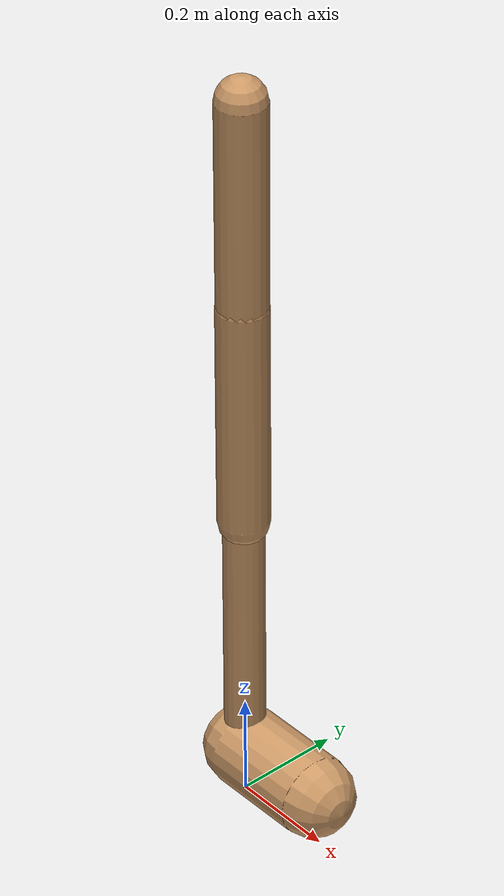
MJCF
<mujoco model="walker2d">
  <compiler angle="degree" coordinate="global" inertiafromgeom="true" />
  <default>
    <joint armature="0.01" damping=".1" limited="true" />
    <geom conaffinity="0" condim="3" contype="1" density="1000" friction="0.8 .1 .1" rgba="0.8 0.6 .4 1" />
  </default>
  <option integrator="RK4" timestep="0.002" />
  <worldbody>

    <body name="torso" pos="0 0 -0.016518971770869723">
      <joint armature="0" axis="1 0 0" damping="0" limited="false" name="ignorex" pos="0 0 0" stiffness="0" type="slide" />
      <joint armature="0" axis="0 0 1" damping="0" limited="false" name="ignorez" pos="0 0 0" ref="1.25" stiffness="0" type="slide" />
      <joint armature="0" axis="0 1 0" damping="0" limited="false" name="ignorey" pos="0 0 0" stiffness="0" type="hinge" />
      <geom fromto="0 0 1.45 0 0 1.05" name="torso_geom" size="0.046079504267342045" type="capsule" />
      <body name="thigh">
        <joint axis="0 -1 0" name="thigh_joint" pos="0 0 1.05" range="-150 0" type="hinge" />
        <geom fromto="0.0 0.0 1.05 0.0 0.0 0.6078247761019909" name="thigh_geom" size="0.047083429200646454" type="capsule" />
        <body name="leg" pos="0.0 0.0 0.007824776101990949">
          <joint axis="0 -1 0" name="leg_joint" pos="0 0 0.6" range="-150 0" type="hinge" />
          <geom fromto="0.0 0.0 0.6 0.0 0.0 0.1086941956688788" name="leg_geom" size="0.03766674336051717" type="capsule" />
          <body name="foot" pos="0.0 0.0 0.008694195668878801">
            <joint axis="0 -1 0" name="foot_joint" pos="0 0 0.1" range="-45 45" type="hinge" />
            <geom fromto="0.0 0.0 0.1 0.18447250196641704 0.0 0.1" name="foot_geom" size="0.07584412998334523" type="capsule" />
          </body>
        </body>
      </body>

      <body name="thigh_left">
        <joint axis="0 -1 0" name="thigh_left_joint" pos="0 0 1.05" range="-150 0" type="hinge" />
        <geom fromto="0.0 0.0 1.05 0.0 0.0 0.6078247761019909" name="thigh_left_geom" rgba=".7 .3 .6 1" size="0.047083429200646454" type="capsule" />
        <body name="leg_left" pos="0.0 0.0 0.007824776101990949">
          <joint axis="0 -1 0" name="leg_left_joint" pos="0 0 0.6" range="-150 0" type="hinge" />
          <geom fromto="0.0 0.0 0.6 0.0 0.0 0.1086941956688788" name="leg_left_geom" rgba=".7 .3 .6 1" size="0.03766674336051717" type="capsule" />
          <body name="foot_left" pos="0.0 0.0 0.008694195668878801">
            <joint axis="0 -1 0" name="foot_left_joint" pos="0 0 0.1" range="-45 45" type="hinge" />
            <geom fromto="0.0 0.0 0.1 0.18447250196641704 0.0 0.1" name="foot_left_geom" rgba=".7 .3 .6 1" size="0.07584412998334523" type="capsule" />
          </body>
        </body>
      </body>
    </body>
  </worldbody>
  <actuator>

    <motor ctrllimited="true" ctrlrange="-1.0 1.0" gear="100" joint="thigh_joint" />
    <motor ctrllimited="true" ctrlrange="-1.0 1.0" gear="100" joint="leg_joint" />
    <motor ctrllimited="true" ctrlrange="-1.0 1.0" gear="100" joint="foot_joint" />
    <motor ctrllimited="true" ctrlrange="-1.0 1.0" gear="100" joint="thigh_left_joint" />
    <motor ctrllimited="true" ctrlrange="-1.0 1.0" gear="100" joint="leg_left_joint" />
    <motor ctrllimited="true" ctrlrange="-1.0 1.0" gear="100" joint="foot_left_joint" />

  </actuator>
</mujoco>
